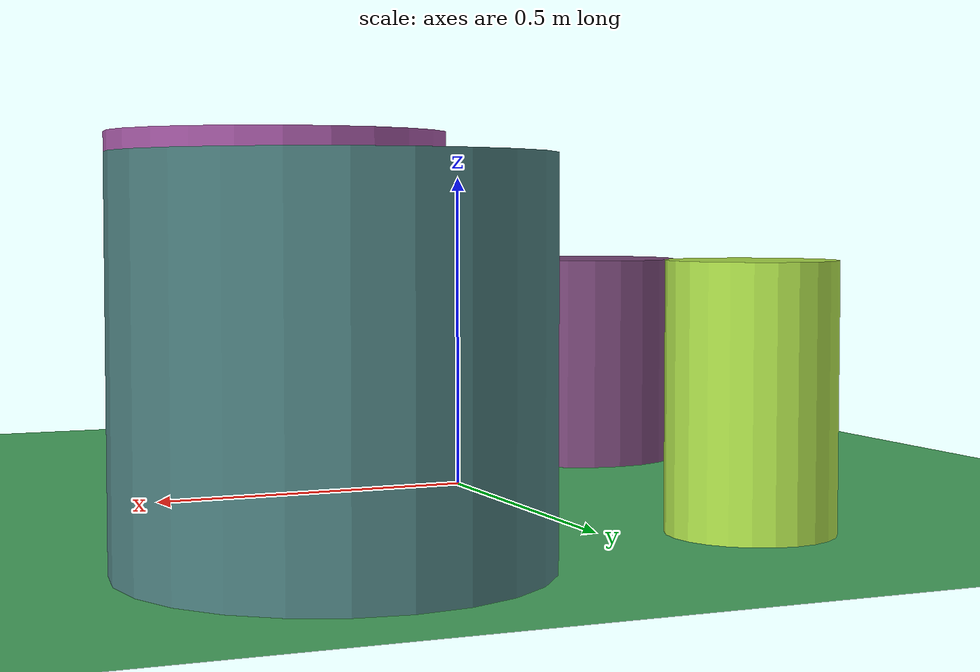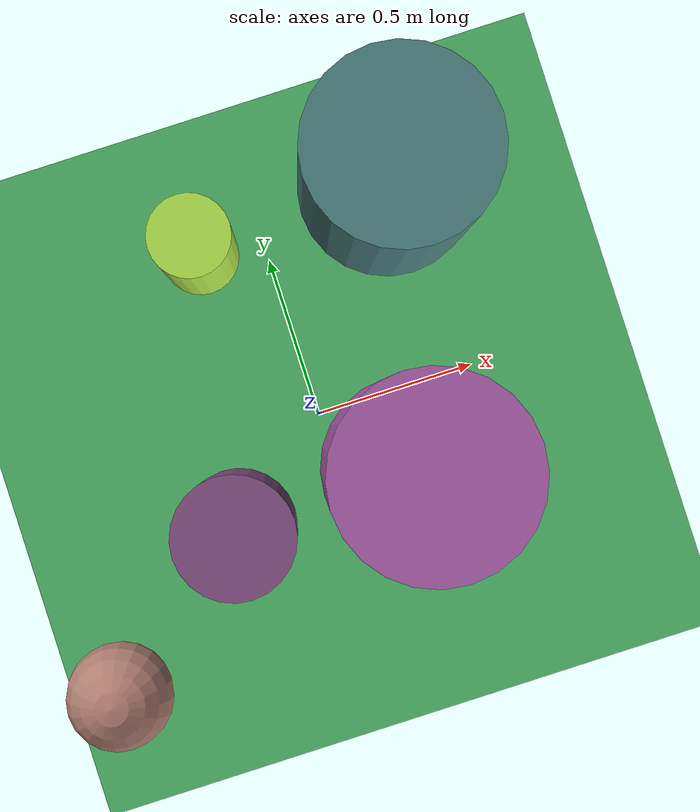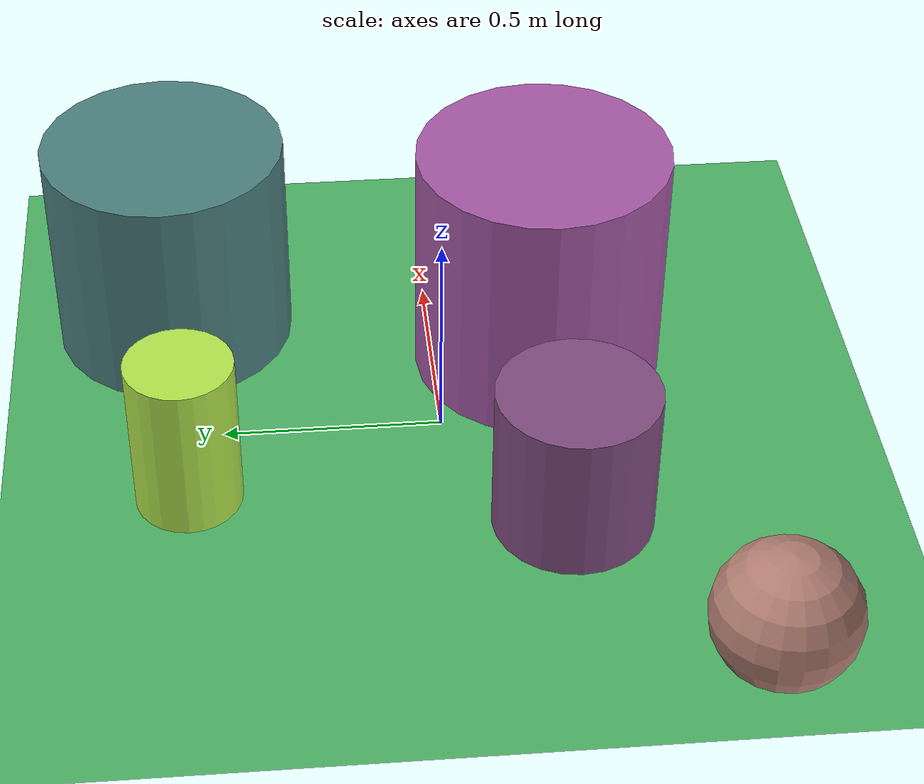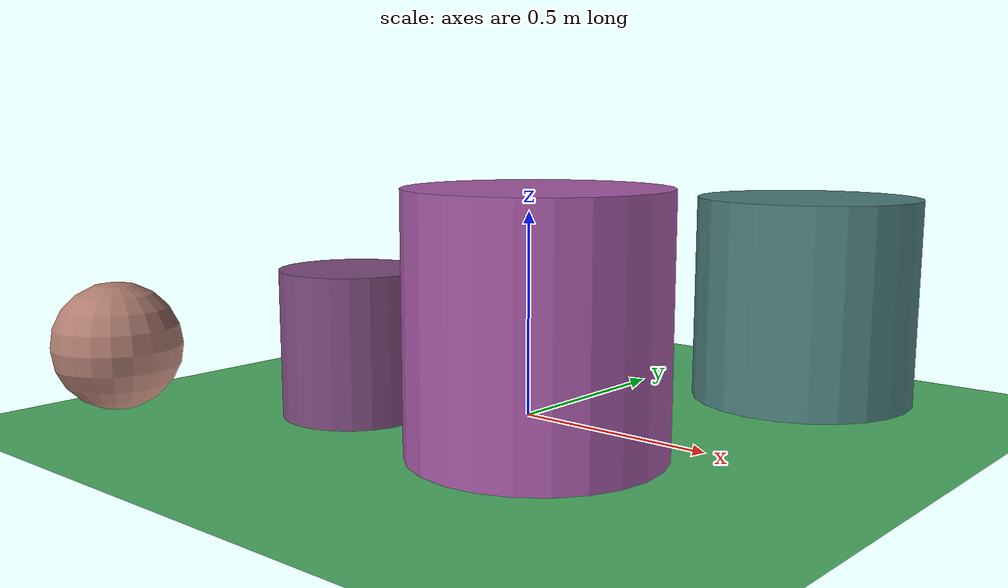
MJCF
<mujoco>
   <asset>
<texture type="skybox" builtin="gradient" rgb1="0.2 0.6 0.3" rgb2="0.9 0.3 0.7" width="256" height="256"/>
<texture name="gradient_0" builtin="gradient" rgb1="1.0 0.2 0.7" rgb2="0.3 0.5 0.6" width="200" height="200"/>
<texture name="gradient_1" builtin="gradient" rgb1="0.5 0.2 0.8" rgb2="0.5 0.4 0.2" width="200" height="200"/>
<texture name="gradient_2" builtin="gradient" rgb1="0.6 0.3 0.1" rgb2="0.8 0.7 0.8" width="200" height="200"/>
<texture name="flat_3" builtin="flat" rgb1="0.3 0.5 0.5" rgb2="0.3 0.5 0.5"  width="200" height="200"/>
<texture name="flat_4" builtin="flat" rgb1="0.7 0.9 0.3" rgb2="0.7 0.9 0.3"  width="200" height="200"/><material name="gradient_0_mat" reflectance="0" texture="gradient_0" texuniform="true"/>
<material name="gradient_1_mat" reflectance="0" texture="gradient_1" texuniform="true"/>
<material name="gradient_2_mat" reflectance="0" texture="gradient_2" texuniform="true"/>
<material name="flat_3_mat" reflectance="0" texture="flat_3" texuniform="true"/>
<material name="flat_4_mat" reflectance="0" texture="flat_4" texuniform="true"/>
   </asset>

   <worldbody>
      <light diffuse=".9 .9 .9" pos="0 0 3" dir="0 0 -1"/>
     <geom type="plane" size="1 1 0.1" rgba="0.3 0.7 0.4 1"/>
<geom type="cylinder" pos="0.23 -0.25 0.29" size="0.29 0.29 0.29" material="gradient_0_mat" />
<geom type="cylinder" pos="-0.34 -0.26 0.18" size="0.18 0.18 0.18" material="gradient_1_mat" />
<geom type="sphere" pos="-0.82 -0.62 0.16" size="0.16 0.16 0.16" material="gradient_2_mat" />
<geom type="cylinder" pos="0.42 0.61 0.26" size="0.28 0.26 0.26" material="flat_3_mat" />
<geom type="cylinder" pos="-0.2 0.58 0.19" size="0.12 0.19 0.19" material="flat_4_mat" /><camera euler="60 0 180" fovy="60" name="camera_a" pos="0 -1.5 1"></camera>   </worldbody>
</mujoco>
